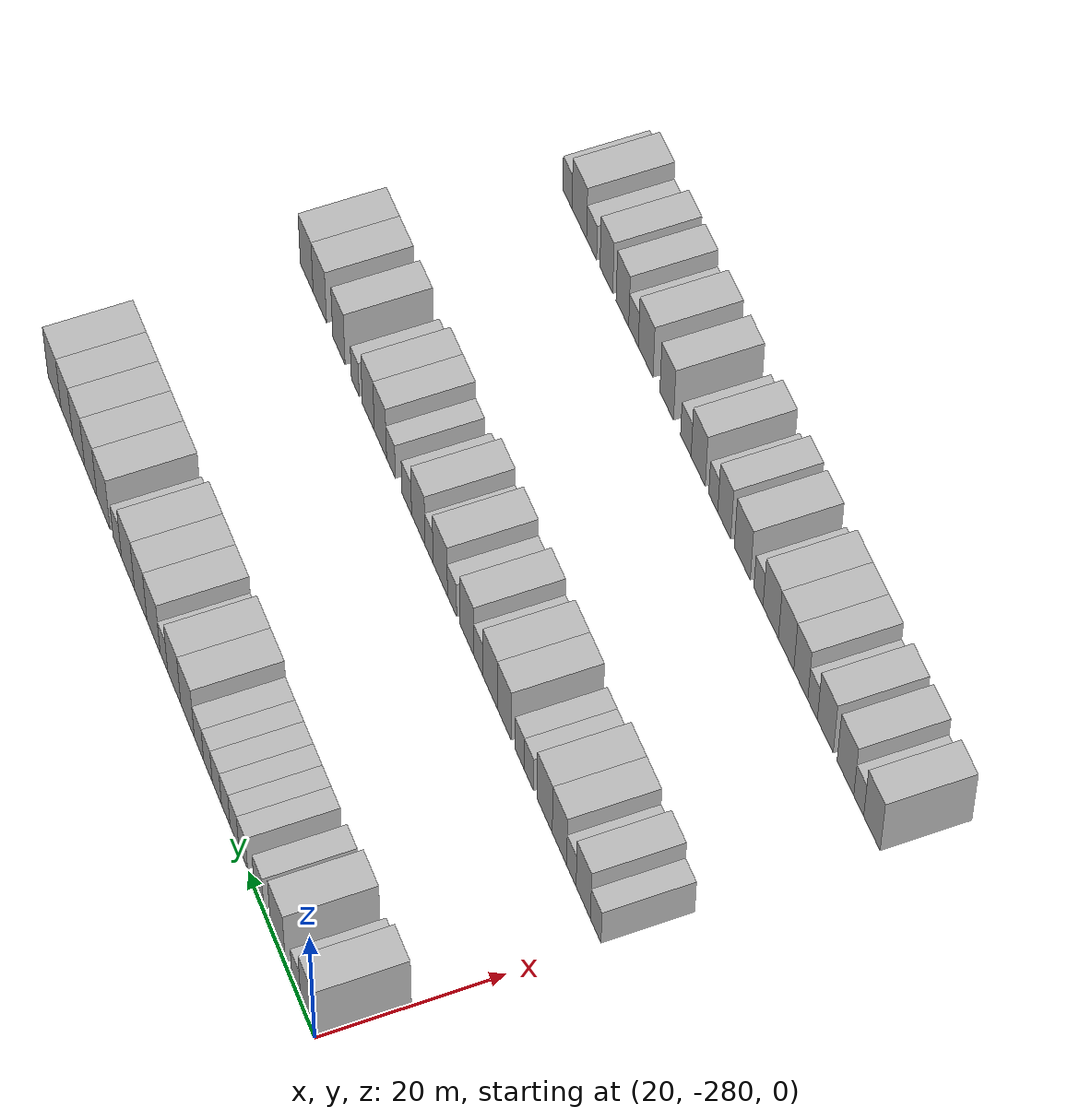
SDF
<sdf version="1.6">
 <world name="default">
  <model name="building_1">
   <static>1</static>
   <pose>25.0000 -277.8074 0 0.000000 0.000000 0.000000</pose>
   <link name="link">
    <pose>0 0 4.50 0 0 0</pose>
    <collision name="collision"><geometry><box><size>10.0000 4.3852 9.0000</size></box></geometry></collision>
    <visual name="visual">
     <cast_shadows>0</cast_shadows>
     <geometry><box><size>10.0000 4.3852 9.0000</size></box></geometry>
     <material>
      <script>
       <uri>model://HANNAS_wall/materials/scripts</uri>
       <uri>model://HANNAS_wall/materials/textures</uri>
       <name>vrc/HANNAS_wall</name>
      </script>
     </material>
    </visual>
   </link>
  </model>
  <model name="building_2">
   <static>1</static>
   <pose>25.0000 -274.3171 0 0.000000 0.000000 0.000000</pose>
   <link name="link">
    <pose>0 0 3.00 0 0 0</pose>
    <collision name="collision"><geometry><box><size>10.0000 2.5955 6.0000</size></box></geometry></collision>
    <visual name="visual">
     <cast_shadows>0</cast_shadows>
     <geometry><box><size>10.0000 2.5955 6.0000</size></box></geometry>
     <material>
      <script>
       <uri>model://HANNAS_wall/materials/scripts</uri>
       <uri>model://HANNAS_wall/materials/textures</uri>
       <name>vrc/HANNAS_wall</name>
      </script>
     </material>
    </visual>
   </link>
  </model>
  <model name="building_3">
   <static>1</static>
   <pose>25.0000 -268.8242 0 0.000000 0.000000 0.000000</pose>
   <link name="link">
    <pose>0 0 4.50 0 0 0</pose>
    <collision name="collision"><geometry><box><size>10.0000 4.3903 9.0000</size></box></geometry></collision>
    <visual name="visual">
     <cast_shadows>0</cast_shadows>
     <geometry><box><size>10.0000 4.3903 9.0000</size></box></geometry>
     <material>
      <script>
       <uri>model://HANNAS_wall/materials/scripts</uri>
       <uri>model://HANNAS_wall/materials/textures</uri>
       <name>vrc/HANNAS_wall</name>
      </script>
     </material>
    </visual>
   </link>
  </model>
  <model name="building_4">
   <static>1</static>
   <pose>25.0000 -263.1533 0 0.000000 0.000000 0.000000</pose>
   <link name="link">
    <pose>0 0 3.00 0 0 0</pose>
    <collision name="collision"><geometry><box><size>10.0000 2.9517 6.0000</size></box></geometry></collision>
    <visual name="visual">
     <cast_shadows>0</cast_shadows>
     <geometry><box><size>10.0000 2.9517 6.0000</size></box></geometry>
     <material>
      <script>
       <uri>model://HANNAS_wall/materials/scripts</uri>
       <uri>model://HANNAS_wall/materials/textures</uri>
       <name>vrc/HANNAS_wall</name>
      </script>
     </material>
    </visual>
   </link>
  </model>
  <model name="building_5">
   <static>1</static>
   <pose>25.0000 -258.3207 0 0.000000 0.000000 0.000000</pose>
   <link name="link">
    <pose>0 0 3.00 0 0 0</pose>
    <collision name="collision"><geometry><box><size>10.0000 2.7135 6.0000</size></box></geometry></collision>
    <visual name="visual">
     <cast_shadows>0</cast_shadows>
     <geometry><box><size>10.0000 2.7135 6.0000</size></box></geometry>
     <material>
      <script>
       <uri>model://HANNAS_wall/materials/scripts</uri>
       <uri>model://HANNAS_wall/materials/textures</uri>
       <name>vrc/HANNAS_wall</name>
      </script>
     </material>
    </visual>
   </link>
  </model>
  <model name="building_6">
   <static>1</static>
   <pose>25.0000 -255.6534 0 0.000000 0.000000 0.000000</pose>
   <link name="link">
    <pose>0 0 3.00 0 0 0</pose>
    <collision name="collision"><geometry><box><size>10.0000 2.6212 6.0000</size></box></geometry></collision>
    <visual name="visual">
     <cast_shadows>0</cast_shadows>
     <geometry><box><size>10.0000 2.6212 6.0000</size></box></geometry>
     <material>
      <script>
       <uri>model://HANNAS_wall/materials/scripts</uri>
       <uri>model://HANNAS_wall/materials/textures</uri>
       <name>vrc/HANNAS_wall</name>
      </script>
     </material>
    </visual>
   </link>
  </model>
  <model name="building_7">
   <static>1</static>
   <pose>25.0000 -253.0103 0 0.000000 0.000000 0.000000</pose>
   <link name="link">
    <pose>0 0 3.00 0 0 0</pose>
    <collision name="collision"><geometry><box><size>10.0000 2.6650 6.0000</size></box></geometry></collision>
    <visual name="visual">
     <cast_shadows>0</cast_shadows>
     <geometry><box><size>10.0000 2.6650 6.0000</size></box></geometry>
     <material>
      <script>
       <uri>model://HANNAS_wall/materials/scripts</uri>
       <uri>model://HANNAS_wall/materials/textures</uri>
       <name>vrc/HANNAS_wall</name>
      </script>
     </material>
    </visual>
   </link>
  </model>
  <model name="building_8">
   <static>1</static>
   <pose>25.0000 -250.2612 0 0.000000 0.000000 0.000000</pose>
   <link name="link">
    <pose>0 0 3.00 0 0 0</pose>
    <collision name="collision"><geometry><box><size>10.0000 2.8333 6.0000</size></box></geometry></collision>
    <visual name="visual">
     <cast_shadows>0</cast_shadows>
     <geometry><box><size>10.0000 2.8333 6.0000</size></box></geometry>
     <material>
      <script>
       <uri>model://HANNAS_wall/materials/scripts</uri>
       <uri>model://HANNAS_wall/materials/textures</uri>
       <name>vrc/HANNAS_wall</name>
      </script>
     </material>
    </visual>
   </link>
  </model>
  <model name="building_9">
   <static>1</static>
   <pose>25.0000 -247.5011 0 0.000000 0.000000 0.000000</pose>
   <link name="link">
    <pose>0 0 3.00 0 0 0</pose>
    <collision name="collision"><geometry><box><size>10.0000 2.6869 6.0000</size></box></geometry></collision>
    <visual name="visual">
     <cast_shadows>0</cast_shadows>
     <geometry><box><size>10.0000 2.6869 6.0000</size></box></geometry>
     <material>
      <script>
       <uri>model://HANNAS_wall/materials/scripts</uri>
       <uri>model://HANNAS_wall/materials/textures</uri>
       <name>vrc/HANNAS_wall</name>
      </script>
     </material>
    </visual>
   </link>
  </model>
  <model name="building_10">
   <static>1</static>
   <pose>25.0000 -244.6979 0 0.000000 0.000000 0.000000</pose>
   <link name="link">
    <pose>0 0 3.00 0 0 0</pose>
    <collision name="collision"><geometry><box><size>10.0000 2.9194 6.0000</size></box></geometry></collision>
    <visual name="visual">
     <cast_shadows>0</cast_shadows>
     <geometry><box><size>10.0000 2.9194 6.0000</size></box></geometry>
     <material>
      <script>
       <uri>model://HANNAS_wall/materials/scripts</uri>
       <uri>model://HANNAS_wall/materials/textures</uri>
       <name>vrc/HANNAS_wall</name>
      </script>
     </material>
    </visual>
   </link>
  </model>
  <model name="building_11">
   <static>1</static>
   <pose>25.0000 -241.1214 0 0.000000 0.000000 0.000000</pose>
   <link name="link">
    <pose>0 0 4.50 0 0 0</pose>
    <collision name="collision"><geometry><box><size>10.0000 4.2337 9.0000</size></box></geometry></collision>
    <visual name="visual">
     <cast_shadows>0</cast_shadows>
     <geometry><box><size>10.0000 4.2337 9.0000</size></box></geometry>
     <material>
      <script>
       <uri>model://HANNAS_wall/materials/scripts</uri>
       <uri>model://HANNAS_wall/materials/textures</uri>
       <name>vrc/HANNAS_wall</name>
      </script>
     </material>
    </visual>
   </link>
  </model>
  <model name="building_12">
   <static>1</static>
   <pose>25.0000 -236.9326 0 0.000000 0.000000 0.000000</pose>
   <link name="link">
    <pose>0 0 4.50 0 0 0</pose>
    <collision name="collision"><geometry><box><size>10.0000 4.1439 9.0000</size></box></geometry></collision>
    <visual name="visual">
     <cast_shadows>0</cast_shadows>
     <geometry><box><size>10.0000 4.1439 9.0000</size></box></geometry>
     <material>
      <script>
       <uri>model://HANNAS_wall/materials/scripts</uri>
       <uri>model://HANNAS_wall/materials/textures</uri>
       <name>vrc/HANNAS_wall</name>
      </script>
     </material>
    </visual>
   </link>
  </model>
  <model name="building_13">
   <static>1</static>
   <pose>25.0000 -233.6497 0 0.000000 0.000000 0.000000</pose>
   <link name="link">
    <pose>0 0 3.00 0 0 0</pose>
    <collision name="collision"><geometry><box><size>10.0000 2.4217 6.0000</size></box></geometry></collision>
    <visual name="visual">
     <cast_shadows>0</cast_shadows>
     <geometry><box><size>10.0000 2.4217 6.0000</size></box></geometry>
     <material>
      <script>
       <uri>model://HANNAS_wall/materials/scripts</uri>
       <uri>model://HANNAS_wall/materials/textures</uri>
       <name>vrc/HANNAS_wall</name>
      </script>
     </material>
    </visual>
   </link>
  </model>
  <model name="building_14">
   <static>1</static>
   <pose>25.0000 -230.3244 0 0.000000 0.000000 0.000000</pose>
   <link name="link">
    <pose>0 0 4.50 0 0 0</pose>
    <collision name="collision"><geometry><box><size>10.0000 4.2289 9.0000</size></box></geometry></collision>
    <visual name="visual">
     <cast_shadows>0</cast_shadows>
     <geometry><box><size>10.0000 4.2289 9.0000</size></box></geometry>
     <material>
      <script>
       <uri>model://HANNAS_wall/materials/scripts</uri>
       <uri>model://HANNAS_wall/materials/textures</uri>
       <name>vrc/HANNAS_wall</name>
      </script>
     </material>
    </visual>
   </link>
  </model>
  <model name="building_15">
   <static>1</static>
   <pose>25.0000 -226.2073 0 0.000000 0.000000 0.000000</pose>
   <link name="link">
    <pose>0 0 4.50 0 0 0</pose>
    <collision name="collision"><geometry><box><size>10.0000 4.0054 9.0000</size></box></geometry></collision>
    <visual name="visual">
     <cast_shadows>0</cast_shadows>
     <geometry><box><size>10.0000 4.0054 9.0000</size></box></geometry>
     <material>
      <script>
       <uri>model://HANNAS_wall/materials/scripts</uri>
       <uri>model://HANNAS_wall/materials/textures</uri>
       <name>vrc/HANNAS_wall</name>
      </script>
     </material>
    </visual>
   </link>
  </model>
  <model name="building_16">
   <static>1</static>
   <pose>25.0000 -222.0700 0 0.000000 0.000000 0.000000</pose>
   <link name="link">
    <pose>0 0 4.50 0 0 0</pose>
    <collision name="collision"><geometry><box><size>10.0000 4.2691 9.0000</size></box></geometry></collision>
    <visual name="visual">
     <cast_shadows>0</cast_shadows>
     <geometry><box><size>10.0000 4.2691 9.0000</size></box></geometry>
     <material>
      <script>
       <uri>model://HANNAS_wall/materials/scripts</uri>
       <uri>model://HANNAS_wall/materials/textures</uri>
       <name>vrc/HANNAS_wall</name>
      </script>
     </material>
    </visual>
   </link>
  </model>
  <model name="building_17">
   <static>1</static>
   <pose>25.0000 -218.5456 0 0.000000 0.000000 0.000000</pose>
   <link name="link">
    <pose>0 0 3.00 0 0 0</pose>
    <collision name="collision"><geometry><box><size>10.0000 2.7796 6.0000</size></box></geometry></collision>
    <visual name="visual">
     <cast_shadows>0</cast_shadows>
     <geometry><box><size>10.0000 2.7796 6.0000</size></box></geometry>
     <material>
      <script>
       <uri>model://HANNAS_wall/materials/scripts</uri>
       <uri>model://HANNAS_wall/materials/textures</uri>
       <name>vrc/HANNAS_wall</name>
      </script>
     </material>
    </visual>
   </link>
  </model>
  <model name="building_18">
   <static>1</static>
   <pose>25.0000 -213.9851 0 0.000000 0.000000 0.000000</pose>
   <link name="link">
    <pose>0 0 4.50 0 0 0</pose>
    <collision name="collision"><geometry><box><size>10.0000 4.3414 9.0000</size></box></geometry></collision>
    <visual name="visual">
     <cast_shadows>0</cast_shadows>
     <geometry><box><size>10.0000 4.3414 9.0000</size></box></geometry>
     <material>
      <script>
       <uri>model://HANNAS_wall/materials/scripts</uri>
       <uri>model://HANNAS_wall/materials/textures</uri>
       <name>vrc/HANNAS_wall</name>
      </script>
     </material>
    </visual>
   </link>
  </model>
  <model name="building_19">
   <static>1</static>
   <pose>25.0000 -209.7853 0 0.000000 0.000000 0.000000</pose>
   <link name="link">
    <pose>0 0 4.50 0 0 0</pose>
    <collision name="collision"><geometry><box><size>10.0000 4.0582 9.0000</size></box></geometry></collision>
    <visual name="visual">
     <cast_shadows>0</cast_shadows>
     <geometry><box><size>10.0000 4.0582 9.0000</size></box></geometry>
     <material>
      <script>
       <uri>model://HANNAS_wall/materials/scripts</uri>
       <uri>model://HANNAS_wall/materials/textures</uri>
       <name>vrc/HANNAS_wall</name>
      </script>
     </material>
    </visual>
   </link>
  </model>
  <model name="building_20">
   <static>1</static>
   <pose>25.0000 -205.7376 0 0.000000 0.000000 0.000000</pose>
   <link name="link">
    <pose>0 0 4.50 0 0 0</pose>
    <collision name="collision"><geometry><box><size>10.0000 4.0372 9.0000</size></box></geometry></collision>
    <visual name="visual">
     <cast_shadows>0</cast_shadows>
     <geometry><box><size>10.0000 4.0372 9.0000</size></box></geometry>
     <material>
      <script>
       <uri>model://HANNAS_wall/materials/scripts</uri>
       <uri>model://HANNAS_wall/materials/textures</uri>
       <name>vrc/HANNAS_wall</name>
      </script>
     </material>
    </visual>
   </link>
  </model>
  <model name="building_21">
   <static>1</static>
   <pose>25.0000 -201.7286 0 0.000000 0.000000 0.000000</pose>
   <link name="link">
    <pose>0 0 4.50 0 0 0</pose>
    <collision name="collision"><geometry><box><size>10.0000 3.9809 9.0000</size></box></geometry></collision>
    <visual name="visual">
     <cast_shadows>0</cast_shadows>
     <geometry><box><size>10.0000 3.9809 9.0000</size></box></geometry>
     <material>
      <script>
       <uri>model://HANNAS_wall/materials/scripts</uri>
       <uri>model://HANNAS_wall/materials/textures</uri>
       <name>vrc/HANNAS_wall</name>
      </script>
     </material>
    </visual>
   </link>
  </model>
  <model name="building_22">
   <static>1</static>
   <pose>25.0000 -197.5421 0 0.000000 0.000000 0.000000</pose>
   <link name="link">
    <pose>0 0 4.50 0 0 0</pose>
    <collision name="collision"><geometry><box><size>10.0000 4.3920 9.0000</size></box></geometry></collision>
    <visual name="visual">
     <cast_shadows>0</cast_shadows>
     <geometry><box><size>10.0000 4.3920 9.0000</size></box></geometry>
     <material>
      <script>
       <uri>model://HANNAS_wall/materials/scripts</uri>
       <uri>model://HANNAS_wall/materials/textures</uri>
       <name>vrc/HANNAS_wall</name>
      </script>
     </material>
    </visual>
   </link>
  </model>
  <model name="building_133">
   <static>1</static>
   <pose>55.0000 -278.5506 0 0.000000 0.000000 0.000000</pose>
   <link name="link">
    <pose>0 0 3.00 0 0 0</pose>
    <collision name="collision"><geometry><box><size>10.0000 2.8987 6.0000</size></box></geometry></collision>
    <visual name="visual">
     <cast_shadows>0</cast_shadows>
     <geometry><box><size>10.0000 2.8987 6.0000</size></box></geometry>
     <material>
      <script>
       <uri>model://HANNAS_wall/materials/scripts</uri>
       <uri>model://HANNAS_wall/materials/textures</uri>
       <name>vrc/HANNAS_wall</name>
      </script>
     </material>
    </visual>
   </link>
  </model>
  <model name="building_134">
   <static>1</static>
   <pose>55.0000 -275.1191 0 0.000000 0.000000 0.000000</pose>
   <link name="link">
    <pose>0 0 4.50 0 0 0</pose>
    <collision name="collision"><geometry><box><size>10.0000 3.9644 9.0000</size></box></geometry></collision>
    <visual name="visual">
     <cast_shadows>0</cast_shadows>
     <geometry><box><size>10.0000 3.9644 9.0000</size></box></geometry>
     <material>
      <script>
       <uri>model://HANNAS_wall/materials/scripts</uri>
       <uri>model://HANNAS_wall/materials/textures</uri>
       <name>vrc/HANNAS_wall</name>
      </script>
     </material>
    </visual>
   </link>
  </model>
  <model name="building_135">
   <static>1</static>
   <pose>55.0000 -271.8211 0 0.000000 0.000000 0.000000</pose>
   <link name="link">
    <pose>0 0 3.00 0 0 0</pose>
    <collision name="collision"><geometry><box><size>10.0000 2.6315 6.0000</size></box></geometry></collision>
    <visual name="visual">
     <cast_shadows>0</cast_shadows>
     <geometry><box><size>10.0000 2.6315 6.0000</size></box></geometry>
     <material>
      <script>
       <uri>model://HANNAS_wall/materials/scripts</uri>
       <uri>model://HANNAS_wall/materials/textures</uri>
       <name>vrc/HANNAS_wall</name>
      </script>
     </material>
    </visual>
   </link>
  </model>
  <model name="building_136">
   <static>1</static>
   <pose>55.0000 -268.4926 0 0.000000 0.000000 0.000000</pose>
   <link name="link">
    <pose>0 0 4.50 0 0 0</pose>
    <collision name="collision"><geometry><box><size>10.0000 4.0256 9.0000</size></box></geometry></collision>
    <visual name="visual">
     <cast_shadows>0</cast_shadows>
     <geometry><box><size>10.0000 4.0256 9.0000</size></box></geometry>
     <material>
      <script>
       <uri>model://HANNAS_wall/materials/scripts</uri>
       <uri>model://HANNAS_wall/materials/textures</uri>
       <name>vrc/HANNAS_wall</name>
      </script>
     </material>
    </visual>
   </link>
  </model>
  <model name="building_137">
   <static>1</static>
   <pose>55.0000 -264.3534 0 0.000000 0.000000 0.000000</pose>
   <link name="link">
    <pose>0 0 4.50 0 0 0</pose>
    <collision name="collision"><geometry><box><size>10.0000 4.2528 9.0000</size></box></geometry></collision>
    <visual name="visual">
     <cast_shadows>0</cast_shadows>
     <geometry><box><size>10.0000 4.2528 9.0000</size></box></geometry>
     <material>
      <script>
       <uri>model://HANNAS_wall/materials/scripts</uri>
       <uri>model://HANNAS_wall/materials/textures</uri>
       <name>vrc/HANNAS_wall</name>
      </script>
     </material>
    </visual>
   </link>
  </model>
  <model name="building_138">
   <static>1</static>
   <pose>55.0000 -259.9015 0 0.000000 0.000000 0.000000</pose>
   <link name="link">
    <pose>0 0 3.00 0 0 0</pose>
    <collision name="collision"><geometry><box><size>10.0000 2.6511 6.0000</size></box></geometry></collision>
    <visual name="visual">
     <cast_shadows>0</cast_shadows>
     <geometry><box><size>10.0000 2.6511 6.0000</size></box></geometry>
     <material>
      <script>
       <uri>model://HANNAS_wall/materials/scripts</uri>
       <uri>model://HANNAS_wall/materials/textures</uri>
       <name>vrc/HANNAS_wall</name>
      </script>
     </material>
    </visual>
   </link>
  </model>
  <model name="building_139">
   <static>1</static>
   <pose>55.0000 -257.2090 0 0.000000 0.000000 0.000000</pose>
   <link name="link">
    <pose>0 0 3.00 0 0 0</pose>
    <collision name="collision"><geometry><box><size>10.0000 2.7339 6.0000</size></box></geometry></collision>
    <visual name="visual">
     <cast_shadows>0</cast_shadows>
     <geometry><box><size>10.0000 2.7339 6.0000</size></box></geometry>
     <material>
      <script>
       <uri>model://HANNAS_wall/materials/scripts</uri>
       <uri>model://HANNAS_wall/materials/textures</uri>
       <name>vrc/HANNAS_wall</name>
      </script>
     </material>
    </visual>
   </link>
  </model>
  <model name="building_140">
   <static>1</static>
   <pose>55.0000 -252.8437 0 0.000000 0.000000 0.000000</pose>
   <link name="link">
    <pose>0 0 4.50 0 0 0</pose>
    <collision name="collision"><geometry><box><size>10.0000 3.9966 9.0000</size></box></geometry></collision>
    <visual name="visual">
     <cast_shadows>0</cast_shadows>
     <geometry><box><size>10.0000 3.9966 9.0000</size></box></geometry>
     <material>
      <script>
       <uri>model://HANNAS_wall/materials/scripts</uri>
       <uri>model://HANNAS_wall/materials/textures</uri>
       <name>vrc/HANNAS_wall</name>
      </script>
     </material>
    </visual>
   </link>
  </model>
  <model name="building_141">
   <static>1</static>
   <pose>55.0000 -248.7714 0 0.000000 0.000000 0.000000</pose>
   <link name="link">
    <pose>0 0 4.50 0 0 0</pose>
    <collision name="collision"><geometry><box><size>10.0000 4.1482 9.0000</size></box></geometry></collision>
    <visual name="visual">
     <cast_shadows>0</cast_shadows>
     <geometry><box><size>10.0000 4.1482 9.0000</size></box></geometry>
     <material>
      <script>
       <uri>model://HANNAS_wall/materials/scripts</uri>
       <uri>model://HANNAS_wall/materials/textures</uri>
       <name>vrc/HANNAS_wall</name>
      </script>
     </material>
    </visual>
   </link>
  </model>
  <model name="building_142">
   <static>1</static>
   <pose>55.0000 -245.3492 0 0.000000 0.000000 0.000000</pose>
   <link name="link">
    <pose>0 0 3.00 0 0 0</pose>
    <collision name="collision"><geometry><box><size>10.0000 2.6961 6.0000</size></box></geometry></collision>
    <visual name="visual">
     <cast_shadows>0</cast_shadows>
     <geometry><box><size>10.0000 2.6961 6.0000</size></box></geometry>
     <material>
      <script>
       <uri>model://HANNAS_wall/materials/scripts</uri>
       <uri>model://HANNAS_wall/materials/textures</uri>
       <name>vrc/HANNAS_wall</name>
      </script>
     </material>
    </visual>
   </link>
  </model>
  <model name="building_143">
   <static>1</static>
   <pose>55.0000 -241.9755 0 0.000000 0.000000 0.000000</pose>
   <link name="link">
    <pose>0 0 4.50 0 0 0</pose>
    <collision name="collision"><geometry><box><size>10.0000 4.0512 9.0000</size></box></geometry></collision>
    <visual name="visual">
     <cast_shadows>0</cast_shadows>
     <geometry><box><size>10.0000 4.0512 9.0000</size></box></geometry>
     <material>
      <script>
       <uri>model://HANNAS_wall/materials/scripts</uri>
       <uri>model://HANNAS_wall/materials/textures</uri>
       <name>vrc/HANNAS_wall</name>
      </script>
     </material>
    </visual>
   </link>
  </model>
  <model name="building_144">
   <static>1</static>
   <pose>55.0000 -237.6004 0 0.000000 0.000000 0.000000</pose>
   <link name="link">
    <pose>0 0 3.00 0 0 0</pose>
    <collision name="collision"><geometry><box><size>10.0000 2.6991 6.0000</size></box></geometry></collision>
    <visual name="visual">
     <cast_shadows>0</cast_shadows>
     <geometry><box><size>10.0000 2.6991 6.0000</size></box></geometry>
     <material>
      <script>
       <uri>model://HANNAS_wall/materials/scripts</uri>
       <uri>model://HANNAS_wall/materials/textures</uri>
       <name>vrc/HANNAS_wall</name>
      </script>
     </material>
    </visual>
   </link>
  </model>
  <model name="building_145">
   <static>1</static>
   <pose>55.0000 -234.1031 0 0.000000 0.000000 0.000000</pose>
   <link name="link">
    <pose>0 0 4.50 0 0 0</pose>
    <collision name="collision"><geometry><box><size>10.0000 4.2956 9.0000</size></box></geometry></collision>
    <visual name="visual">
     <cast_shadows>0</cast_shadows>
     <geometry><box><size>10.0000 4.2956 9.0000</size></box></geometry>
     <material>
      <script>
       <uri>model://HANNAS_wall/materials/scripts</uri>
       <uri>model://HANNAS_wall/materials/textures</uri>
       <name>vrc/HANNAS_wall</name>
      </script>
     </material>
    </visual>
   </link>
  </model>
  <model name="building_146">
   <static>1</static>
   <pose>55.0000 -230.7527 0 0.000000 0.000000 0.000000</pose>
   <link name="link">
    <pose>0 0 3.00 0 0 0</pose>
    <collision name="collision"><geometry><box><size>10.0000 2.4052 6.0000</size></box></geometry></collision>
    <visual name="visual">
     <cast_shadows>0</cast_shadows>
     <geometry><box><size>10.0000 2.4052 6.0000</size></box></geometry>
     <material>
      <script>
       <uri>model://HANNAS_wall/materials/scripts</uri>
       <uri>model://HANNAS_wall/materials/textures</uri>
       <name>vrc/HANNAS_wall</name>
      </script>
     </material>
    </visual>
   </link>
  </model>
  <model name="building_147">
   <static>1</static>
   <pose>55.0000 -227.5192 0 0.000000 0.000000 0.000000</pose>
   <link name="link">
    <pose>0 0 4.50 0 0 0</pose>
    <collision name="collision"><geometry><box><size>10.0000 4.0619 9.0000</size></box></geometry></collision>
    <visual name="visual">
     <cast_shadows>0</cast_shadows>
     <geometry><box><size>10.0000 4.0619 9.0000</size></box></geometry>
     <material>
      <script>
       <uri>model://HANNAS_wall/materials/scripts</uri>
       <uri>model://HANNAS_wall/materials/textures</uri>
       <name>vrc/HANNAS_wall</name>
      </script>
     </material>
    </visual>
   </link>
  </model>
  <model name="building_148">
   <static>1</static>
   <pose>55.0000 -224.0204 0 0.000000 0.000000 0.000000</pose>
   <link name="link">
    <pose>0 0 3.00 0 0 0</pose>
    <collision name="collision"><geometry><box><size>10.0000 2.9357 6.0000</size></box></geometry></collision>
    <visual name="visual">
     <cast_shadows>0</cast_shadows>
     <geometry><box><size>10.0000 2.9357 6.0000</size></box></geometry>
     <material>
      <script>
       <uri>model://HANNAS_wall/materials/scripts</uri>
       <uri>model://HANNAS_wall/materials/textures</uri>
       <name>vrc/HANNAS_wall</name>
      </script>
     </material>
    </visual>
   </link>
  </model>
  <model name="building_149">
   <static>1</static>
   <pose>55.0000 -219.2031 0 0.000000 0.000000 0.000000</pose>
   <link name="link">
    <pose>0 0 3.00 0 0 0</pose>
    <collision name="collision"><geometry><box><size>10.0000 2.6988 6.0000</size></box></geometry></collision>
    <visual name="visual">
     <cast_shadows>0</cast_shadows>
     <geometry><box><size>10.0000 2.6988 6.0000</size></box></geometry>
     <material>
      <script>
       <uri>model://HANNAS_wall/materials/scripts</uri>
       <uri>model://HANNAS_wall/materials/textures</uri>
       <name>vrc/HANNAS_wall</name>
      </script>
     </material>
    </visual>
   </link>
  </model>
  <model name="building_150">
   <static>1</static>
   <pose>55.0000 -215.9722 0 0.000000 0.000000 0.000000</pose>
   <link name="link">
    <pose>0 0 4.50 0 0 0</pose>
    <collision name="collision"><geometry><box><size>10.0000 3.7631 9.0000</size></box></geometry></collision>
    <visual name="visual">
     <cast_shadows>0</cast_shadows>
     <geometry><box><size>10.0000 3.7631 9.0000</size></box></geometry>
     <material>
      <script>
       <uri>model://HANNAS_wall/materials/scripts</uri>
       <uri>model://HANNAS_wall/materials/textures</uri>
       <name>vrc/HANNAS_wall</name>
      </script>
     </material>
    </visual>
   </link>
  </model>
  <model name="building_151">
   <static>1</static>
   <pose>55.0000 -212.2347 0 0.000000 0.000000 0.000000</pose>
   <link name="link">
    <pose>0 0 4.50 0 0 0</pose>
    <collision name="collision"><geometry><box><size>10.0000 3.7119 9.0000</size></box></geometry></collision>
    <visual name="visual">
     <cast_shadows>0</cast_shadows>
     <geometry><box><size>10.0000 3.7119 9.0000</size></box></geometry>
     <material>
      <script>
       <uri>model://HANNAS_wall/materials/scripts</uri>
       <uri>model://HANNAS_wall/materials/textures</uri>
       <name>vrc/HANNAS_wall</name>
      </script>
     </material>
    </visual>
   </link>
  </model>
  <model name="building_152">
   <static>1</static>
   <pose>55.0000 -208.1683 0 0.000000 0.000000 0.000000</pose>
   <link name="link">
    <pose>0 0 3.00 0 0 0</pose>
    <collision name="collision"><geometry><box><size>10.0000 2.4208 6.0000</size></box></geometry></collision>
    <visual name="visual">
     <cast_shadows>0</cast_shadows>
     <geometry><box><size>10.0000 2.4208 6.0000</size></box></geometry>
     <material>
      <script>
       <uri>model://HANNAS_wall/materials/scripts</uri>
       <uri>model://HANNAS_wall/materials/textures</uri>
       <name>vrc/HANNAS_wall</name>
      </script>
     </material>
    </visual>
   </link>
  </model>
  <model name="building_153">
   <static>1</static>
   <pose>55.0000 -203.0363 0 0.000000 0.000000 0.000000</pose>
   <link name="link">
    <pose>0 0 4.50 0 0 0</pose>
    <collision name="collision"><geometry><box><size>10.0000 3.8433 9.0000</size></box></geometry></collision>
    <visual name="visual">
     <cast_shadows>0</cast_shadows>
     <geometry><box><size>10.0000 3.8433 9.0000</size></box></geometry>
     <material>
      <script>
       <uri>model://HANNAS_wall/materials/scripts</uri>
       <uri>model://HANNAS_wall/materials/textures</uri>
       <name>vrc/HANNAS_wall</name>
      </script>
     </material>
    </visual>
   </link>
  </model>
  <model name="building_154">
   <static>1</static>
   <pose>55.0000 -196.9892 0 0.000000 0.000000 0.000000</pose>
   <link name="link">
    <pose>0 0 4.50 0 0 0</pose>
    <collision name="collision"><geometry><box><size>10.0000 4.2509 9.0000</size></box></geometry></collision>
    <visual name="visual">
     <cast_shadows>0</cast_shadows>
     <geometry><box><size>10.0000 4.2509 9.0000</size></box></geometry>
     <material>
      <script>
       <uri>model://HANNAS_wall/materials/scripts</uri>
       <uri>model://HANNAS_wall/materials/textures</uri>
       <name>vrc/HANNAS_wall</name>
      </script>
     </material>
    </visual>
   </link>
  </model>
  <model name="building_155">
   <static>1</static>
   <pose>55.0000 -192.8165 0 0.000000 0.000000 0.000000</pose>
   <link name="link">
    <pose>0 0 4.50 0 0 0</pose>
    <collision name="collision"><geometry><box><size>10.0000 4.0945 9.0000</size></box></geometry></collision>
    <visual name="visual">
     <cast_shadows>0</cast_shadows>
     <geometry><box><size>10.0000 4.0945 9.0000</size></box></geometry>
     <material>
      <script>
       <uri>model://HANNAS_wall/materials/scripts</uri>
       <uri>model://HANNAS_wall/materials/textures</uri>
       <name>vrc/HANNAS_wall</name>
      </script>
     </material>
    </visual>
   </link>
  </model>
  <model name="building_273">
   <static>1</static>
   <pose>85.0000 -277.8652 0 0.000000 0.000000 0.000000</pose>
   <link name="link">
    <pose>0 0 4.50 0 0 0</pose>
    <collision name="collision"><geometry><box><size>10.0000 4.2697 9.0000</size></box></geometry></collision>
    <visual name="visual">
     <cast_shadows>0</cast_shadows>
     <geometry><box><size>10.0000 4.2697 9.0000</size></box></geometry>
     <material>
      <script>
       <uri>model://HANNAS_wall/materials/scripts</uri>
       <uri>model://HANNAS_wall/materials/textures</uri>
       <name>vrc/HANNAS_wall</name>
      </script>
     </material>
    </visual>
   </link>
  </model>
  <model name="building_274">
   <static>1</static>
   <pose>85.0000 -274.4386 0 0.000000 0.000000 0.000000</pose>
   <link name="link">
    <pose>0 0 3.00 0 0 0</pose>
    <collision name="collision"><geometry><box><size>10.0000 2.5834 6.0000</size></box></geometry></collision>
    <visual name="visual">
     <cast_shadows>0</cast_shadows>
     <geometry><box><size>10.0000 2.5834 6.0000</size></box></geometry>
     <material>
      <script>
       <uri>model://HANNAS_wall/materials/scripts</uri>
       <uri>model://HANNAS_wall/materials/textures</uri>
       <name>vrc/HANNAS_wall</name>
      </script>
     </material>
    </visual>
   </link>
  </model>
  <model name="building_275">
   <static>1</static>
   <pose>85.0000 -270.9600 0 0.000000 0.000000 0.000000</pose>
   <link name="link">
    <pose>0 0 4.50 0 0 0</pose>
    <collision name="collision"><geometry><box><size>10.0000 4.3738 9.0000</size></box></geometry></collision>
    <visual name="visual">
     <cast_shadows>0</cast_shadows>
     <geometry><box><size>10.0000 4.3738 9.0000</size></box></geometry>
     <material>
      <script>
       <uri>model://HANNAS_wall/materials/scripts</uri>
       <uri>model://HANNAS_wall/materials/textures</uri>
       <name>vrc/HANNAS_wall</name>
      </script>
     </material>
    </visual>
   </link>
  </model>
  <model name="building_276">
   <static>1</static>
   <pose>85.0000 -265.6685 0 0.000000 0.000000 0.000000</pose>
   <link name="link">
    <pose>0 0 4.50 0 0 0</pose>
    <collision name="collision"><geometry><box><size>10.0000 4.2092 9.0000</size></box></geometry></collision>
    <visual name="visual">
     <cast_shadows>0</cast_shadows>
     <geometry><box><size>10.0000 4.2092 9.0000</size></box></geometry>
     <material>
      <script>
       <uri>model://HANNAS_wall/materials/scripts</uri>
       <uri>model://HANNAS_wall/materials/textures</uri>
       <name>vrc/HANNAS_wall</name>
      </script>
     </material>
    </visual>
   </link>
  </model>
  <model name="building_277">
   <static>1</static>
   <pose>85.0000 -262.2857 0 0.000000 0.000000 0.000000</pose>
   <link name="link">
    <pose>0 0 3.00 0 0 0</pose>
    <collision name="collision"><geometry><box><size>10.0000 2.5564 6.0000</size></box></geometry></collision>
    <visual name="visual">
     <cast_shadows>0</cast_shadows>
     <geometry><box><size>10.0000 2.5564 6.0000</size></box></geometry>
     <material>
      <script>
       <uri>model://HANNAS_wall/materials/scripts</uri>
       <uri>model://HANNAS_wall/materials/textures</uri>
       <name>vrc/HANNAS_wall</name>
      </script>
     </material>
    </visual>
   </link>
  </model>
  <model name="building_278">
   <static>1</static>
   <pose>85.0000 -259.1332 0 0.000000 0.000000 0.000000</pose>
   <link name="link">
    <pose>0 0 4.50 0 0 0</pose>
    <collision name="collision"><geometry><box><size>10.0000 3.7486 9.0000</size></box></geometry></collision>
    <visual name="visual">
     <cast_shadows>0</cast_shadows>
     <geometry><box><size>10.0000 3.7486 9.0000</size></box></geometry>
     <material>
      <script>
       <uri>model://HANNAS_wall/materials/scripts</uri>
       <uri>model://HANNAS_wall/materials/textures</uri>
       <name>vrc/HANNAS_wall</name>
      </script>
     </material>
    </visual>
   </link>
  </model>
  <model name="building_279">
   <static>1</static>
   <pose>85.0000 -255.1795 0 0.000000 0.000000 0.000000</pose>
   <link name="link">
    <pose>0 0 4.50 0 0 0</pose>
    <collision name="collision"><geometry><box><size>10.0000 4.1589 9.0000</size></box></geometry></collision>
    <visual name="visual">
     <cast_shadows>0</cast_shadows>
     <geometry><box><size>10.0000 4.1589 9.0000</size></box></geometry>
     <material>
      <script>
       <uri>model://HANNAS_wall/materials/scripts</uri>
       <uri>model://HANNAS_wall/materials/textures</uri>
       <name>vrc/HANNAS_wall</name>
      </script>
     </material>
    </visual>
   </link>
  </model>
  <model name="building_280">
   <static>1</static>
   <pose>85.0000 -251.0100 0 0.000000 0.000000 0.000000</pose>
   <link name="link">
    <pose>0 0 4.50 0 0 0</pose>
    <collision name="collision"><geometry><box><size>10.0000 4.1802 9.0000</size></box></geometry></collision>
    <visual name="visual">
     <cast_shadows>0</cast_shadows>
     <geometry><box><size>10.0000 4.1802 9.0000</size></box></geometry>
     <material>
      <script>
       <uri>model://HANNAS_wall/materials/scripts</uri>
       <uri>model://HANNAS_wall/materials/textures</uri>
       <name>vrc/HANNAS_wall</name>
      </script>
     </material>
    </visual>
   </link>
  </model>
  <model name="building_281">
   <static>1</static>
   <pose>85.0000 -247.6702 0 0.000000 0.000000 0.000000</pose>
   <link name="link">
    <pose>0 0 3.00 0 0 0</pose>
    <collision name="collision"><geometry><box><size>10.0000 2.4993 6.0000</size></box></geometry></collision>
    <visual name="visual">
     <cast_shadows>0</cast_shadows>
     <geometry><box><size>10.0000 2.4993 6.0000</size></box></geometry>
     <material>
      <script>
       <uri>model://HANNAS_wall/materials/scripts</uri>
       <uri>model://HANNAS_wall/materials/textures</uri>
       <name>vrc/HANNAS_wall</name>
      </script>
     </material>
    </visual>
   </link>
  </model>
  <model name="building_282">
   <static>1</static>
   <pose>85.0000 -243.2236 0 0.000000 0.000000 0.000000</pose>
   <link name="link">
    <pose>0 0 4.50 0 0 0</pose>
    <collision name="collision"><geometry><box><size>10.0000 4.3940 9.0000</size></box></geometry></collision>
    <visual name="visual">
     <cast_shadows>0</cast_shadows>
     <geometry><box><size>10.0000 4.3940 9.0000</size></box></geometry>
     <material>
      <script>
       <uri>model://HANNAS_wall/materials/scripts</uri>
       <uri>model://HANNAS_wall/materials/textures</uri>
       <name>vrc/HANNAS_wall</name>
      </script>
     </material>
    </visual>
   </link>
  </model>
  <model name="building_283">
   <static>1</static>
   <pose>85.0000 -238.2191 0 0.000000 0.000000 0.000000</pose>
   <link name="link">
    <pose>0 0 4.50 0 0 0</pose>
    <collision name="collision"><geometry><box><size>10.0000 3.6149 9.0000</size></box></geometry></collision>
    <visual name="visual">
     <cast_shadows>0</cast_shadows>
     <geometry><box><size>10.0000 3.6149 9.0000</size></box></geometry>
     <material>
      <script>
       <uri>model://HANNAS_wall/materials/scripts</uri>
       <uri>model://HANNAS_wall/materials/textures</uri>
       <name>vrc/HANNAS_wall</name>
      </script>
     </material>
    </visual>
   </link>
  </model>
  <model name="building_284">
   <static>1</static>
   <pose>85.0000 -235.1611 0 0.000000 0.000000 0.000000</pose>
   <link name="link">
    <pose>0 0 3.00 0 0 0</pose>
    <collision name="collision"><geometry><box><size>10.0000 2.5012 6.0000</size></box></geometry></collision>
    <visual name="visual">
     <cast_shadows>0</cast_shadows>
     <geometry><box><size>10.0000 2.5012 6.0000</size></box></geometry>
     <material>
      <script>
       <uri>model://HANNAS_wall/materials/scripts</uri>
       <uri>model://HANNAS_wall/materials/textures</uri>
       <name>vrc/HANNAS_wall</name>
      </script>
     </material>
    </visual>
   </link>
  </model>
  <model name="building_285">
   <static>1</static>
   <pose>85.0000 -230.9127 0 0.000000 0.000000 0.000000</pose>
   <link name="link">
    <pose>0 0 4.50 0 0 0</pose>
    <collision name="collision"><geometry><box><size>10.0000 3.9956 9.0000</size></box></geometry></collision>
    <visual name="visual">
     <cast_shadows>0</cast_shadows>
     <geometry><box><size>10.0000 3.9956 9.0000</size></box></geometry>
     <material>
      <script>
       <uri>model://HANNAS_wall/materials/scripts</uri>
       <uri>model://HANNAS_wall/materials/textures</uri>
       <name>vrc/HANNAS_wall</name>
      </script>
     </material>
    </visual>
   </link>
  </model>
  <model name="building_286">
   <static>1</static>
   <pose>85.0000 -227.4202 0 0.000000 0.000000 0.000000</pose>
   <link name="link">
    <pose>0 0 3.00 0 0 0</pose>
    <collision name="collision"><geometry><box><size>10.0000 2.9893 6.0000</size></box></geometry></collision>
    <visual name="visual">
     <cast_shadows>0</cast_shadows>
     <geometry><box><size>10.0000 2.9893 6.0000</size></box></geometry>
     <material>
      <script>
       <uri>model://HANNAS_wall/materials/scripts</uri>
       <uri>model://HANNAS_wall/materials/textures</uri>
       <name>vrc/HANNAS_wall</name>
      </script>
     </material>
    </visual>
   </link>
  </model>
  <model name="building_287">
   <static>1</static>
   <pose>85.0000 -221.9690 0 0.000000 0.000000 0.000000</pose>
   <link name="link">
    <pose>0 0 4.50 0 0 0</pose>
    <collision name="collision"><geometry><box><size>10.0000 3.9130 9.0000</size></box></geometry></collision>
    <visual name="visual">
     <cast_shadows>0</cast_shadows>
     <geometry><box><size>10.0000 3.9130 9.0000</size></box></geometry>
     <material>
      <script>
       <uri>model://HANNAS_wall/materials/scripts</uri>
       <uri>model://HANNAS_wall/materials/textures</uri>
       <name>vrc/HANNAS_wall</name>
      </script>
     </material>
    </visual>
   </link>
  </model>
  <model name="building_288">
   <static>1</static>
   <pose>85.0000 -215.8862 0 0.000000 0.000000 0.000000</pose>
   <link name="link">
    <pose>0 0 4.50 0 0 0</pose>
    <collision name="collision"><geometry><box><size>10.0000 4.2525 9.0000</size></box></geometry></collision>
    <visual name="visual">
     <cast_shadows>0</cast_shadows>
     <geometry><box><size>10.0000 4.2525 9.0000</size></box></geometry>
     <material>
      <script>
       <uri>model://HANNAS_wall/materials/scripts</uri>
       <uri>model://HANNAS_wall/materials/textures</uri>
       <name>vrc/HANNAS_wall</name>
      </script>
     </material>
    </visual>
   </link>
  </model>
  <model name="building_289">
   <static>1</static>
   <pose>85.0000 -212.3569 0 0.000000 0.000000 0.000000</pose>
   <link name="link">
    <pose>0 0 3.00 0 0 0</pose>
    <collision name="collision"><geometry><box><size>10.0000 2.8062 6.0000</size></box></geometry></collision>
    <visual name="visual">
     <cast_shadows>0</cast_shadows>
     <geometry><box><size>10.0000 2.8062 6.0000</size></box></geometry>
     <material>
      <script>
       <uri>model://HANNAS_wall/materials/scripts</uri>
       <uri>model://HANNAS_wall/materials/textures</uri>
       <name>vrc/HANNAS_wall</name>
      </script>
     </material>
    </visual>
   </link>
  </model>
  <model name="building_290">
   <static>1</static>
   <pose>85.0000 -209.1099 0 0.000000 0.000000 0.000000</pose>
   <link name="link">
    <pose>0 0 4.50 0 0 0</pose>
    <collision name="collision"><geometry><box><size>10.0000 3.6878 9.0000</size></box></geometry></collision>
    <visual name="visual">
     <cast_shadows>0</cast_shadows>
     <geometry><box><size>10.0000 3.6878 9.0000</size></box></geometry>
     <material>
      <script>
       <uri>model://HANNAS_wall/materials/scripts</uri>
       <uri>model://HANNAS_wall/materials/textures</uri>
       <name>vrc/HANNAS_wall</name>
      </script>
     </material>
    </visual>
   </link>
  </model>
  <model name="building_291">
   <static>1</static>
   <pose>85.0000 -204.3772 0 0.000000 0.000000 0.000000</pose>
   <link name="link">
    <pose>0 0 4.50 0 0 0</pose>
    <collision name="collision"><geometry><box><size>10.0000 3.7775 9.0000</size></box></geometry></collision>
    <visual name="visual">
     <cast_shadows>0</cast_shadows>
     <geometry><box><size>10.0000 3.7775 9.0000</size></box></geometry>
     <material>
      <script>
       <uri>model://HANNAS_wall/materials/scripts</uri>
       <uri>model://HANNAS_wall/materials/textures</uri>
       <name>vrc/HANNAS_wall</name>
      </script>
     </material>
    </visual>
   </link>
  </model>
  <model name="building_292">
   <static>1</static>
   <pose>85.0000 -199.9904 0 0.000000 0.000000 0.000000</pose>
   <link name="link">
    <pose>0 0 3.00 0 0 0</pose>
    <collision name="collision"><geometry><box><size>10.0000 2.9962 6.0000</size></box></geometry></collision>
    <visual name="visual">
     <cast_shadows>0</cast_shadows>
     <geometry><box><size>10.0000 2.9962 6.0000</size></box></geometry>
     <material>
      <script>
       <uri>model://HANNAS_wall/materials/scripts</uri>
       <uri>model://HANNAS_wall/materials/textures</uri>
       <name>vrc/HANNAS_wall</name>
      </script>
     </material>
    </visual>
   </link>
  </model>
  <model name="building_293">
   <static>1</static>
   <pose>85.0000 -196.3220 0 0.000000 0.000000 0.000000</pose>
   <link name="link">
    <pose>0 0 4.50 0 0 0</pose>
    <collision name="collision"><geometry><box><size>10.0000 4.3404 9.0000</size></box></geometry></collision>
    <visual name="visual">
     <cast_shadows>0</cast_shadows>
     <geometry><box><size>10.0000 4.3404 9.0000</size></box></geometry>
     <material>
      <script>
       <uri>model://HANNAS_wall/materials/scripts</uri>
       <uri>model://HANNAS_wall/materials/textures</uri>
       <name>vrc/HANNAS_wall</name>
      </script>
     </material>
    </visual>
   </link>
  </model>
  <model name="building_294">
   <static>1</static>
   <pose>85.0000 -192.7806 0 0.000000 0.000000 0.000000</pose>
   <link name="link">
    <pose>0 0 3.00 0 0 0</pose>
    <collision name="collision"><geometry><box><size>10.0000 2.7426 6.0000</size></box></geometry></collision>
    <visual name="visual">
     <cast_shadows>0</cast_shadows>
     <geometry><box><size>10.0000 2.7426 6.0000</size></box></geometry>
     <material>
      <script>
       <uri>model://HANNAS_wall/materials/scripts</uri>
       <uri>model://HANNAS_wall/materials/textures</uri>
       <name>vrc/HANNAS_wall</name>
      </script>
     </material>
    </visual>
   </link>
  </model>
 </world>
</sdf>
